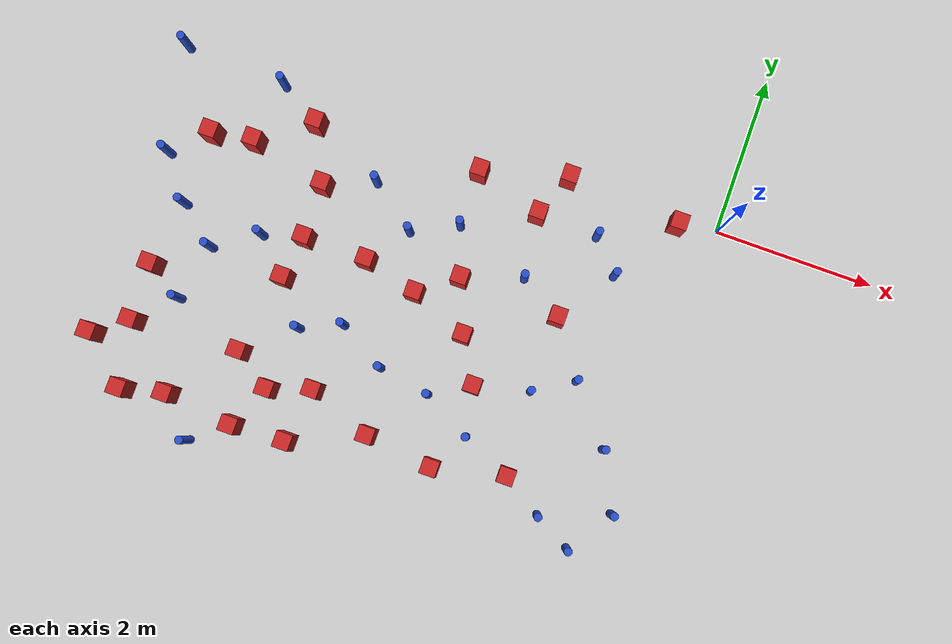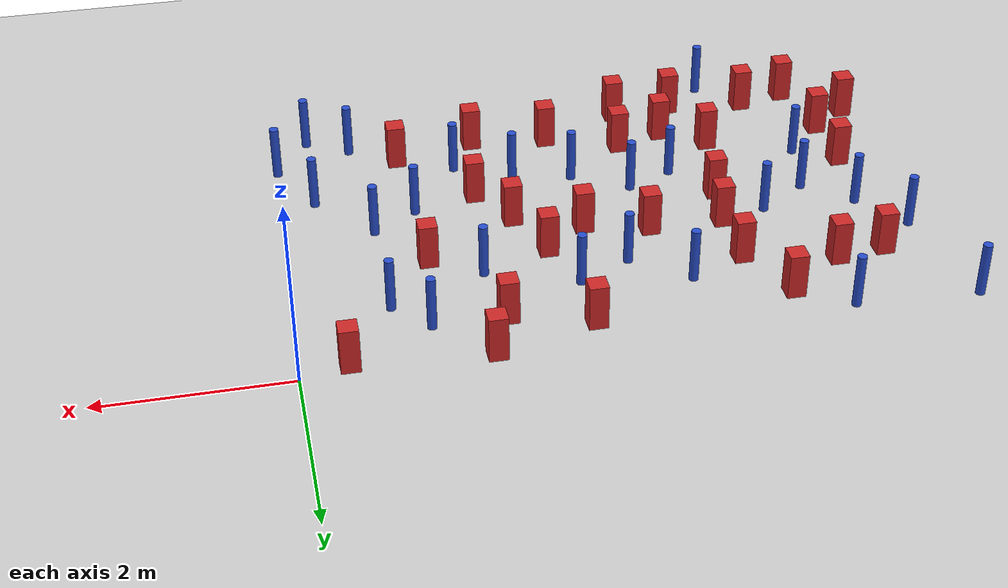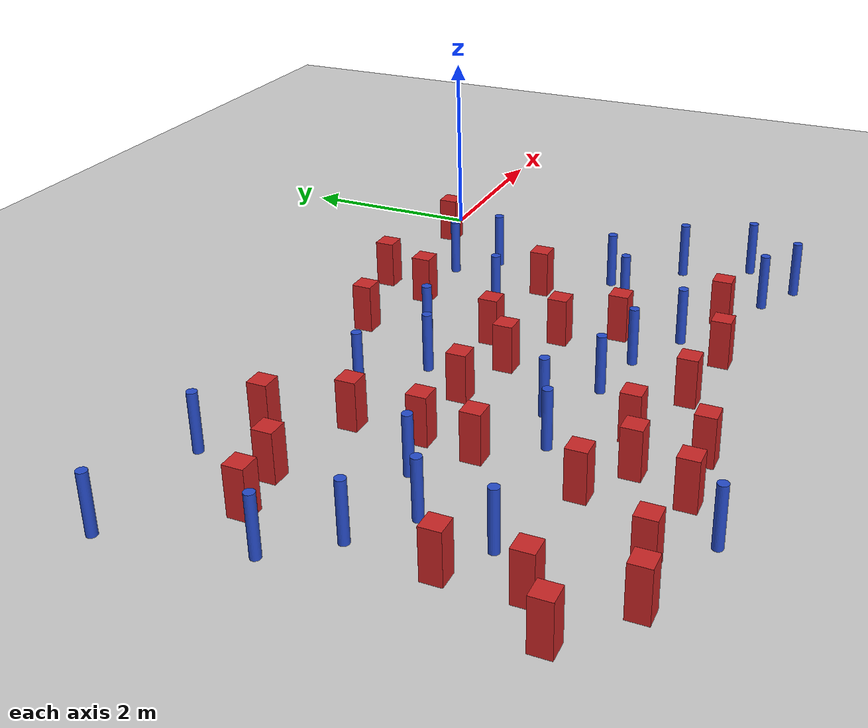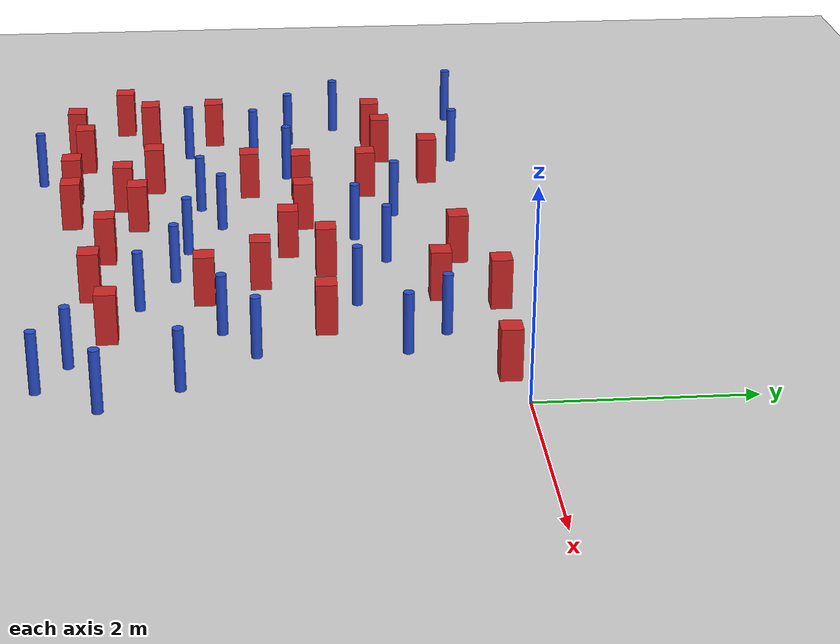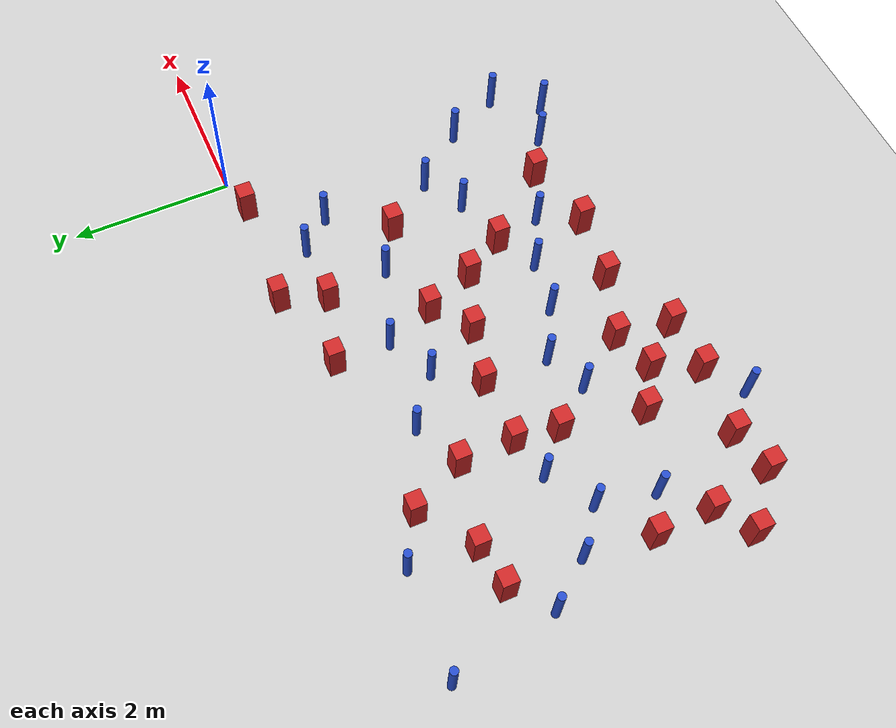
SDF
<sdf version="1.6">
 <world name="default">
  <model name="ground_plane">
   <static>1</static>
   <link name="link">
    <collision name="collision">
     <geometry><plane><normal>0 0 1</normal><size>100 100</size></plane></geometry>
     <surface><friction><ode><mu>100</mu><mu2>50</mu2></ode></friction></surface>
    </collision>
    <visual name="visual">
     <cast_shadows>0</cast_shadows>
     <geometry><plane><normal>0 0 1</normal><size>100 100</size></plane></geometry>
     <material>
      <ambient>1.0 1.0 1.0 1.0</ambient>
      <diffuse>0.8 0.8 0.8 1.0</diffuse>
      <specular>0.01 0.01 0.01 1.000000</specular>
     </material>
    </visual>
   </link>
  </model>
  <model name="NamedLocations">
   <static>true</static>
   <link name="DefaultStart"><pose>8.5 0 0 0 0 3.14</pose></link>
  </model>
  <model name="pole_obstacle5">
   <static>true</static>
   <pose>-5.92422427441 -2.99336722222 7.38925637345e-09 -8.47170692798e-08 1.24976764937e-08 -1.74513093023e-07</pose>
   <link name="link">
    <pose>0 0 0.3 0 -0 0</pose>
    <inertial>
     <mass>1</mass>
     <inertia><ixx>0.145833</ixx><ixy>0</ixy><ixz>0</ixz><iyy>0.145833</iyy><iyz>0</iyz><izz>0.125</izz></inertia>
    </inertial>
    <collision name="collision">
     <geometry><cylinder><radius>0.05</radius><length>.6</length></cylinder></geometry>
    </collision>
    <visual name="visual">
     <geometry><cylinder><radius>0.05</radius><length>.6</length></cylinder></geometry>
     <material>
      <script><name>Gazebo/Blue</name><uri>file://media/materials/scripts/gazebo.material</uri></script>
     </material>
    </visual>
   </link>
  </model>
  <model name="pole_obstacle14">
   <static>true</static>
   <pose>-1.03202337252 -2.32573109386 7.38925637345e-09 -8.47170692799e-08 1.24976765076e-08 -1.74513093016e-07</pose>
   <link name="link">
    <pose>0 0 0.3 0 -0 0</pose>
    <inertial>
     <mass>1</mass>
     <inertia><ixx>0.145833</ixx><ixy>0</ixy><ixz>0</ixz><iyy>0.145833</iyy><iyz>0</iyz><izz>0.125</izz></inertia>
    </inertial>
    <collision name="collision">
     <geometry><cylinder><radius>0.05</radius><length>.6</length></cylinder></geometry>
    </collision>
    <visual name="visual">
     <geometry><cylinder><radius>0.05</radius><length>.6</length></cylinder></geometry>
     <material>
      <script><name>Gazebo/Blue</name><uri>file://media/materials/scripts/gazebo.material</uri></script>
     </material>
    </visual>
   </link>
  </model>
  <model name="square_post_obstacle16">
   <static>true</static>
   <pose>-6.75771435495 -3.72910551877 1.91545236811e-07 -7.35059704564e-06 1.12565212e-07 2.39332434364e-05</pose>
   <link name="link">
    <pose>0 0 0.25 0 -0 0</pose>
    <inertial>
     <mass>100</mass>
     <inertia>
      <ixx>0.166667</ixx>
      <ixy>0</ixy>
      <ixz>0</ixz>
      <iyy>0.166667</iyy>
      <iyz>0</iyz>
      <izz>0.166667</izz>
     </inertia>
    </inertial>
    <collision name="collision"><geometry><box><size>.2 .2 .5</size></box></geometry></collision>
    <visual name="visual">
     <geometry><box><size>.2 .2 .5</size></box></geometry>
     <material>
      <script><name>Gazebo/Red</name><uri>file://media/materials/scripts/gazebo.material</uri></script>
     </material>
    </visual>
   </link>
  </model>
  <model name="pole_obstacle21">
   <static>true</static>
   <pose>-2.67683646743 -3.08276021898 7.38925637345e-09 -8.47170692798e-08 1.24976764939e-08 -1.74513093025e-07</pose>
   <link name="link">
    <pose>0 0 0.3 0 -0 0</pose>
    <inertial>
     <mass>1</mass>
     <inertia><ixx>0.145833</ixx><ixy>0</ixy><ixz>0</ixz><iyy>0.145833</iyy><iyz>0</iyz><izz>0.125</izz></inertia>
    </inertial>
    <collision name="collision">
     <geometry><cylinder><radius>0.05</radius><length>.6</length></cylinder></geometry>
    </collision>
    <visual name="visual">
     <geometry><cylinder><radius>0.05</radius><length>.6</length></cylinder></geometry>
     <material>
      <script><name>Gazebo/Blue</name><uri>file://media/materials/scripts/gazebo.material</uri></script>
     </material>
    </visual>
   </link>
  </model>
  <model name="square_post_obstacle19">
   <static>true</static>
   <pose>-2.14690957063 -0.559340473008 1.91545236811e-07 -7.35059704564e-06 1.12565212e-07 2.39332434364e-05</pose>
   <link name="link">
    <pose>0 0 0.25 0 -0 0</pose>
    <inertial>
     <mass>100</mass>
     <inertia>
      <ixx>0.166667</ixx>
      <ixy>0</ixy>
      <ixz>0</ixz>
      <iyy>0.166667</iyy>
      <iyz>0</iyz>
      <izz>0.166667</izz>
     </inertia>
    </inertial>
    <collision name="collision"><geometry><box><size>.2 .2 .5</size></box></geometry></collision>
    <visual name="visual">
     <geometry><box><size>.2 .2 .5</size></box></geometry>
     <material>
      <script><name>Gazebo/Red</name><uri>file://media/materials/scripts/gazebo.material</uri></script>
     </material>
    </visual>
   </link>
  </model>
  <model name="square_post_obstacle28">
   <static>true</static>
   <pose>-1.93003767817 -0.00814988064899 1.91545236811e-07 -7.35059704564e-06 1.12565212e-07 2.39332434364e-05</pose>
   <link name="link">
    <pose>0 0 0.25 0 -0 0</pose>
    <inertial>
     <mass>100</mass>
     <inertia>
      <ixx>0.166667</ixx>
      <ixy>0</ixy>
      <ixz>0</ixz>
      <iyy>0.166667</iyy>
      <iyz>0</iyz>
      <izz>0.166667</izz>
     </inertia>
    </inertial>
    <collision name="collision"><geometry><box><size>.2 .2 .5</size></box></geometry></collision>
    <visual name="visual">
     <geometry><box><size>.2 .2 .5</size></box></geometry>
     <material>
      <script><name>Gazebo/Red</name><uri>file://media/materials/scripts/gazebo.material</uri></script>
     </material>
    </visual>
   </link>
  </model>
  <model name="pole_obstacle38">
   <static>true</static>
   <pose>-5.64297934202 -0.0756645663234 7.38925637345e-09 -8.47170692799e-08 1.24976765039e-08 -1.74513093019e-07</pose>
   <link name="link">
    <pose>0 0 0.3 0 -0 0</pose>
    <inertial>
     <mass>1</mass>
     <inertia><ixx>0.145833</ixx><ixy>0</ixy><ixz>0</ixz><iyy>0.145833</iyy><iyz>0</iyz><izz>0.125</izz></inertia>
    </inertial>
    <collision name="collision">
     <geometry><cylinder><radius>0.05</radius><length>.6</length></cylinder></geometry>
    </collision>
    <visual name="visual">
     <geometry><cylinder><radius>0.05</radius><length>.6</length></cylinder></geometry>
     <material>
      <script><name>Gazebo/Blue</name><uri>file://media/materials/scripts/gazebo.material</uri></script>
     </material>
    </visual>
   </link>
  </model>
  <model name="square_post_obstacle31">
   <static>true</static>
   <pose>-2.51497236801 -2.26017598558 1.91545236811e-07 -7.35059704564e-06 1.12565212e-07 2.39332434364e-05</pose>
   <link name="link">
    <pose>0 0 0.25 0 -0 0</pose>
    <inertial>
     <mass>100</mass>
     <inertia>
      <ixx>0.166667</ixx>
      <ixy>0</ixy>
      <ixz>0</ixz>
      <iyy>0.166667</iyy>
      <iyz>0</iyz>
      <izz>0.166667</izz>
     </inertia>
    </inertial>
    <collision name="collision"><geometry><box><size>.2 .2 .5</size></box></geometry></collision>
    <visual name="visual">
     <geometry><box><size>.2 .2 .5</size></box></geometry>
     <material>
      <script><name>Gazebo/Red</name><uri>file://media/materials/scripts/gazebo.material</uri></script>
     </material>
    </visual>
   </link>
  </model>
  <model name="pole_obstacle48">
   <static>true</static>
   <pose>-1.0188155598 -0.961352229343 7.38925637345e-09 -8.471706928e-08 1.24976765099e-08 -1.74513093016e-07</pose>
   <link name="link">
    <pose>0 0 0.3 0 -0 0</pose>
    <inertial>
     <mass>1</mass>
     <inertia><ixx>0.145833</ixx><ixy>0</ixy><ixz>0</ixz><iyy>0.145833</iyy><iyz>0</iyz><izz>0.125</izz></inertia>
    </inertial>
    <collision name="collision">
     <geometry><cylinder><radius>0.05</radius><length>.6</length></cylinder></geometry>
    </collision>
    <visual name="visual">
     <geometry><cylinder><radius>0.05</radius><length>.6</length></cylinder></geometry>
     <material>
      <script><name>Gazebo/Blue</name><uri>file://media/materials/scripts/gazebo.material</uri></script>
     </material>
    </visual>
   </link>
  </model>
  <model name="pole_obstacle55">
   <static>true</static>
   <pose>-0.460701783889 -2.99627927897 7.38925637345e-09 -8.471706928e-08 1.24976765163e-08 -1.74513093012e-07</pose>
   <link name="link">
    <pose>0 0 0.3 0 -0 0</pose>
    <inertial>
     <mass>1</mass>
     <inertia><ixx>0.145833</ixx><ixy>0</ixy><ixz>0</ixz><iyy>0.145833</iyy><iyz>0</iyz><izz>0.125</izz></inertia>
    </inertial>
    <collision name="collision">
     <geometry><cylinder><radius>0.05</radius><length>.6</length></cylinder></geometry>
    </collision>
    <visual name="visual">
     <geometry><cylinder><radius>0.05</radius><length>.6</length></cylinder></geometry>
     <material>
      <script><name>Gazebo/Blue</name><uri>file://media/materials/scripts/gazebo.material</uri></script>
     </material>
    </visual>
   </link>
  </model>
  <model name="square_post_obstacle43">
   <static>true</static>
   <pose>-4.08844480099 -4.17398245557 1.91545236811e-07 -7.35059704564e-06 1.12565212e-07 2.39332434364e-05</pose>
   <link name="link">
    <pose>0 0 0.25 0 -0 0</pose>
    <inertial>
     <mass>100</mass>
     <inertia>
      <ixx>0.166667</ixx>
      <ixy>0</ixy>
      <ixz>0</ixz>
      <iyy>0.166667</iyy>
      <iyz>0</iyz>
      <izz>0.166667</izz>
     </inertia>
    </inertial>
    <collision name="collision"><geometry><box><size>.2 .2 .5</size></box></geometry></collision>
    <visual name="visual">
     <geometry><box><size>.2 .2 .5</size></box></geometry>
     <material>
      <script><name>Gazebo/Red</name><uri>file://media/materials/scripts/gazebo.material</uri></script>
     </material>
    </visual>
   </link>
  </model>
  <model name="pole_obstacle57">
   <static>true</static>
   <pose>-0.117461092135 -3.69147865724 7.38925637345e-09 -8.47170692799e-08 1.24976765077e-08 -1.74513093017e-07</pose>
   <link name="link">
    <pose>0 0 0.3 0 -0 0</pose>
    <inertial>
     <mass>1</mass>
     <inertia><ixx>0.145833</ixx><ixy>0</ixy><ixz>0</ixz><iyy>0.145833</iyy><iyz>0</iyz><izz>0.125</izz></inertia>
    </inertial>
    <collision name="collision">
     <geometry><cylinder><radius>0.05</radius><length>.6</length></cylinder></geometry>
    </collision>
    <visual name="visual">
     <geometry><cylinder><radius>0.05</radius><length>.6</length></cylinder></geometry>
     <material>
      <script><name>Gazebo/Blue</name><uri>file://media/materials/scripts/gazebo.material</uri></script>
     </material>
    </visual>
   </link>
  </model>
  <model name="square_post_obstacle48">
   <static>true</static>
   <pose>-1.50870329451 -1.67532720508 1.91545236811e-07 -7.35059704564e-06 1.12565212e-07 2.39332434364e-05</pose>
   <link name="link">
    <pose>0 0 0.25 0 -0 0</pose>
    <inertial>
     <mass>100</mass>
     <inertia>
      <ixx>0.166667</ixx>
      <ixy>0</ixy>
      <ixz>0</ixz>
      <iyy>0.166667</iyy>
      <iyz>0</iyz>
      <izz>0.166667</izz>
     </inertia>
    </inertial>
    <collision name="collision"><geometry><box><size>.2 .2 .5</size></box></geometry></collision>
    <visual name="visual">
     <geometry><box><size>.2 .2 .5</size></box></geometry>
     <material>
      <script><name>Gazebo/Red</name><uri>file://media/materials/scripts/gazebo.material</uri></script>
     </material>
    </visual>
   </link>
  </model>
  <model name="square_post_obstacle49">
   <static>true</static>
   <pose>-6.3395629756 -3.42934586644 1.91545236811e-07 -7.35059704564e-06 1.12565212e-07 2.39332434364e-05</pose>
   <link name="link">
    <pose>0 0 0.25 0 -0 0</pose>
    <inertial>
     <mass>100</mass>
     <inertia>
      <ixx>0.166667</ixx>
      <ixy>0</ixy>
      <ixz>0</ixz>
      <iyy>0.166667</iyy>
      <iyz>0</iyz>
      <izz>0.166667</izz>
     </inertia>
    </inertial>
    <collision name="collision"><geometry><box><size>.2 .2 .5</size></box></geometry></collision>
    <visual name="visual">
     <geometry><box><size>.2 .2 .5</size></box></geometry>
     <material>
      <script><name>Gazebo/Red</name><uri>file://media/materials/scripts/gazebo.material</uri></script>
     </material>
    </visual>
   </link>
  </model>
  <model name="square_post_obstacle56">
   <static>true</static>
   <pose>-3.92526877685 -1.79413150482 1.91545236811e-07 -7.35059704564e-06 1.12565212e-07 2.39332434364e-05</pose>
   <link name="link">
    <pose>0 0 0.25 0 -0 0</pose>
    <inertial>
     <mass>100</mass>
     <inertia>
      <ixx>0.166667</ixx>
      <ixy>0</ixy>
      <ixz>0</ixz>
      <iyy>0.166667</iyy>
      <iyz>0</iyz>
      <izz>0.166667</izz>
     </inertia>
    </inertial>
    <collision name="collision"><geometry><box><size>.2 .2 .5</size></box></geometry></collision>
    <visual name="visual">
     <geometry><box><size>.2 .2 .5</size></box></geometry>
     <material>
      <script><name>Gazebo/Red</name><uri>file://media/materials/scripts/gazebo.material</uri></script>
     </material>
    </visual>
   </link>
  </model>
  <model name="pole_obstacle69">
   <static>true</static>
   <pose>-3.56157853893 -1.28393471267 7.38925637345e-09 -8.47170692796e-08 1.24976764713e-08 -1.74513093037e-07</pose>
   <link name="link">
    <pose>0 0 0.3 0 -0 0</pose>
    <inertial>
     <mass>1</mass>
     <inertia><ixx>0.145833</ixx><ixy>0</ixy><ixz>0</ixz><iyy>0.145833</iyy><iyz>0</iyz><izz>0.125</izz></inertia>
    </inertial>
    <collision name="collision">
     <geometry><cylinder><radius>0.05</radius><length>.6</length></cylinder></geometry>
    </collision>
    <visual name="visual">
     <geometry><cylinder><radius>0.05</radius><length>.6</length></cylinder></geometry>
     <material>
      <script><name>Gazebo/Blue</name><uri>file://media/materials/scripts/gazebo.material</uri></script>
     </material>
    </visual>
   </link>
  </model>
  <model name="pole_obstacle70">
   <static>true</static>
   <pose>-6.2724538745 -1.87805003263 7.38925637345e-09 -8.471706928e-08 1.24976765134e-08 -1.74513093015e-07</pose>
   <link name="link">
    <pose>0 0 0.3 0 -0 0</pose>
    <inertial>
     <mass>1</mass>
     <inertia><ixx>0.145833</ixx><ixy>0</ixy><ixz>0</ixz><iyy>0.145833</iyy><iyz>0</iyz><izz>0.125</izz></inertia>
    </inertial>
    <collision name="collision">
     <geometry><cylinder><radius>0.05</radius><length>.6</length></cylinder></geometry>
    </collision>
    <visual name="visual">
     <geometry><cylinder><radius>0.05</radius><length>.6</length></cylinder></geometry>
     <material>
      <script><name>Gazebo/Blue</name><uri>file://media/materials/scripts/gazebo.material</uri></script>
     </material>
    </visual>
   </link>
  </model>
  <model name="pole_obstacle71">
   <static>true</static>
   <pose>-5.24745633931 -1.9248122775 7.38925637345e-09 -8.471706928e-08 1.24976765134e-08 -1.74513093015e-07</pose>
   <link name="link">
    <pose>0 0 0.3 0 -0 0</pose>
    <inertial>
     <mass>1</mass>
     <inertia><ixx>0.145833</ixx><ixy>0</ixy><ixz>0</ixz><iyy>0.145833</iyy><iyz>0</iyz><izz>0.125</izz></inertia>
    </inertial>
    <collision name="collision">
     <geometry><cylinder><radius>0.05</radius><length>.6</length></cylinder></geometry>
    </collision>
    <visual name="visual">
     <geometry><cylinder><radius>0.05</radius><length>.6</length></cylinder></geometry>
     <material>
      <script><name>Gazebo/Blue</name><uri>file://media/materials/scripts/gazebo.material</uri></script>
     </material>
    </visual>
   </link>
  </model>
  <model name="pole_obstacle76">
   <static>true</static>
   <pose>-2.99793038643 -1.00536920818 7.38925637345e-09 -8.471706928e-08 1.2497676513e-08 -1.74513093016e-07</pose>
   <link name="link">
    <pose>0 0 0.3 0 -0 0</pose>
    <inertial>
     <mass>1</mass>
     <inertia><ixx>0.145833</ixx><ixy>0</ixy><ixz>0</ixz><iyy>0.145833</iyy><iyz>0</iyz><izz>0.125</izz></inertia>
    </inertial>
    <collision name="collision">
     <geometry><cylinder><radius>0.05</radius><length>.6</length></cylinder></geometry>
    </collision>
    <visual name="visual">
     <geometry><cylinder><radius>0.05</radius><length>.6</length></cylinder></geometry>
     <material>
      <script><name>Gazebo/Blue</name><uri>file://media/materials/scripts/gazebo.material</uri></script>
     </material>
    </visual>
   </link>
  </model>
  <model name="pole_obstacle79">
   <static>true</static>
   <pose>-0.952707416743 -3.99734575518 7.38925637345e-09 -8.471706928e-08 1.24976765256e-08 -1.74513093008e-07</pose>
   <link name="link">
    <pose>0 0 0.3 0 -0 0</pose>
    <inertial>
     <mass>1</mass>
     <inertia><ixx>0.145833</ixx><ixy>0</ixy><ixz>0</ixz><iyy>0.145833</iyy><iyz>0</iyz><izz>0.125</izz></inertia>
    </inertial>
    <collision name="collision">
     <geometry><cylinder><radius>0.05</radius><length>.6</length></cylinder></geometry>
    </collision>
    <visual name="visual">
     <geometry><cylinder><radius>0.05</radius><length>.6</length></cylinder></geometry>
     <material>
      <script><name>Gazebo/Blue</name><uri>file://media/materials/scripts/gazebo.material</uri></script>
     </material>
    </visual>
   </link>
  </model>
  <model name="pole_obstacle89">
   <static>true</static>
   <pose>-5.78349291071 -2.27598309857 7.38925637345e-09 -8.47170692798e-08 1.24976764937e-08 -1.74513093023e-07</pose>
   <link name="link">
    <pose>0 0 0.3 0 -0 0</pose>
    <inertial>
     <mass>1</mass>
     <inertia><ixx>0.145833</ixx><ixy>0</ixy><ixz>0</ixz><iyy>0.145833</iyy><iyz>0</iyz><izz>0.125</izz></inertia>
    </inertial>
    <collision name="collision">
     <geometry><cylinder><radius>0.05</radius><length>.6</length></cylinder></geometry>
    </collision>
    <visual name="visual">
     <geometry><cylinder><radius>0.05</radius><length>.6</length></cylinder></geometry>
     <material>
      <script><name>Gazebo/Blue</name><uri>file://media/materials/scripts/gazebo.material</uri></script>
     </material>
    </visual>
   </link>
  </model>
  <model name="square_post_obstacle82">
   <static>true</static>
   <pose>-6.36509576138 -2.71594949422 1.91545236811e-07 -7.35059704564e-06 1.12565212e-07 2.39332434364e-05</pose>
   <link name="link">
    <pose>0 0 0.25 0 -0 0</pose>
    <inertial>
     <mass>100</mass>
     <inertia>
      <ixx>0.166667</ixx>
      <ixy>0</ixy>
      <ixz>0</ixz>
      <iyy>0.166667</iyy>
      <iyz>0</iyz>
      <izz>0.166667</izz>
     </inertia>
    </inertial>
    <collision name="collision"><geometry><box><size>.2 .2 .5</size></box></geometry></collision>
    <visual name="visual">
     <geometry><box><size>.2 .2 .5</size></box></geometry>
     <material>
      <script><name>Gazebo/Red</name><uri>file://media/materials/scripts/gazebo.material</uri></script>
     </material>
    </visual>
   </link>
  </model>
  <model name="pole_obstacle94">
   <static>true</static>
   <pose>-2.06767888211 -3.40604090848 7.38925637345e-09 -8.47170692798e-08 1.24976764939e-08 -1.74513093025e-07</pose>
   <link name="link">
    <pose>0 0 0.3 0 -0 0</pose>
    <inertial>
     <mass>1</mass>
     <inertia><ixx>0.145833</ixx><ixy>0</ixy><ixz>0</ixz><iyy>0.145833</iyy><iyz>0</iyz><izz>0.125</izz></inertia>
    </inertial>
    <collision name="collision">
     <geometry><cylinder><radius>0.05</radius><length>.6</length></cylinder></geometry>
    </collision>
    <visual name="visual">
     <geometry><cylinder><radius>0.05</radius><length>.6</length></cylinder></geometry>
     <material>
      <script><name>Gazebo/Blue</name><uri>file://media/materials/scripts/gazebo.material</uri></script>
     </material>
    </visual>
   </link>
  </model>
  <model name="square_post_obstacle90">
   <static>true</static>
   <pose>-4.74789491148 -1.10227227521 1.91545236811e-07 -7.35059704564e-06 1.12565212e-07 2.39332434364e-05</pose>
   <link name="link">
    <pose>0 0 0.25 0 -0 0</pose>
    <inertial>
     <mass>100</mass>
     <inertia>
      <ixx>0.166667</ixx>
      <ixy>0</ixy>
      <ixz>0</ixz>
      <iyy>0.166667</iyy>
      <iyz>0</iyz>
      <izz>0.166667</izz>
     </inertia>
    </inertial>
    <collision name="collision"><geometry><box><size>.2 .2 .5</size></box></geometry></collision>
    <visual name="visual">
     <geometry><box><size>.2 .2 .5</size></box></geometry>
     <material>
      <script><name>Gazebo/Red</name><uri>file://media/materials/scripts/gazebo.material</uri></script>
     </material>
    </visual>
   </link>
  </model>
  <model name="square_post_obstacle96">
   <static>true</static>
   <pose>-4.80482659674 -2.3335534852 1.91545236811e-07 -7.35059704564e-06 1.12565212e-07 2.39332434364e-05</pose>
   <link name="link">
    <pose>0 0 0.25 0 -0 0</pose>
    <inertial>
     <mass>100</mass>
     <inertia>
      <ixx>0.166667</ixx>
      <ixy>0</ixy>
      <ixz>0</ixz>
      <iyy>0.166667</iyy>
      <iyz>0</iyz>
      <izz>0.166667</izz>
     </inertia>
    </inertial>
    <collision name="collision"><geometry><box><size>.2 .2 .5</size></box></geometry></collision>
    <visual name="visual">
     <geometry><box><size>.2 .2 .5</size></box></geometry>
     <material>
      <script><name>Gazebo/Red</name><uri>file://media/materials/scripts/gazebo.material</uri></script>
     </material>
    </visual>
   </link>
  </model>
  <model name="square_post_obstacle97">
   <static>true</static>
   <pose>-6.25207061977 -0.951577814349 1.91545236811e-07 -7.35059704564e-06 1.12565212e-07 2.39332434364e-05</pose>
   <link name="link">
    <pose>0 0 0.25 0 -0 0</pose>
    <inertial>
     <mass>100</mass>
     <inertia>
      <ixx>0.166667</ixx>
      <ixy>0</ixy>
      <ixz>0</ixz>
      <iyy>0.166667</iyy>
      <iyz>0</iyz>
      <izz>0.166667</izz>
     </inertia>
    </inertial>
    <collision name="collision"><geometry><box><size>.2 .2 .5</size></box></geometry></collision>
    <visual name="visual">
     <geometry><box><size>.2 .2 .5</size></box></geometry>
     <material>
      <script><name>Gazebo/Red</name><uri>file://media/materials/scripts/gazebo.material</uri></script>
     </material>
    </visual>
   </link>
  </model>
  <model name="square_post_obstacle100">
   <static>true</static>
   <pose>-3.98646588152 -3.48772343266 1.91545236811e-07 -7.35059704564e-06 1.12565212e-07 2.39332434364e-05</pose>
   <link name="link">
    <pose>0 0 0.25 0 -0 0</pose>
    <inertial>
     <mass>100</mass>
     <inertia>
      <ixx>0.166667</ixx>
      <ixy>0</ixy>
      <ixz>0</ixz>
      <iyy>0.166667</iyy>
      <iyz>0</iyz>
      <izz>0.166667</izz>
     </inertia>
    </inertial>
    <collision name="collision"><geometry><box><size>.2 .2 .5</size></box></geometry></collision>
    <visual name="visual">
     <geometry><box><size>.2 .2 .5</size></box></geometry>
     <material>
      <script><name>Gazebo/Red</name><uri>file://media/materials/scripts/gazebo.material</uri></script>
     </material>
    </visual>
   </link>
  </model>
  <model name="pole_obstacle106">
   <static>true</static>
   <pose>-3.32599807744 -2.96946208656 7.38925637345e-09 -8.47170692798e-08 1.24976764939e-08 -1.74513093025e-07</pose>
   <link name="link">
    <pose>0 0 0.3 0 -0 0</pose>
    <inertial>
     <mass>1</mass>
     <inertia><ixx>0.145833</ixx><ixy>0</ixy><ixz>0</ixz><iyy>0.145833</iyy><iyz>0</iyz><izz>0.125</izz></inertia>
    </inertial>
    <collision name="collision">
     <geometry><cylinder><radius>0.05</radius><length>.6</length></cylinder></geometry>
    </collision>
    <visual name="visual">
     <geometry><cylinder><radius>0.05</radius><length>.6</length></cylinder></geometry>
     <material>
      <script><name>Gazebo/Blue</name><uri>file://media/materials/scripts/gazebo.material</uri></script>
     </material>
    </visual>
   </link>
  </model>
  <model name="square_post_obstacle103">
   <static>true</static>
   <pose>-4.7664182334 -4.20837568746 1.91545236811e-07 -7.35059704564e-06 1.12565212e-07 2.39332434364e-05</pose>
   <link name="link">
    <pose>0 0 0.25 0 -0 0</pose>
    <inertial>
     <mass>100</mass>
     <inertia>
      <ixx>0.166667</ixx>
      <ixy>0</ixy>
      <ixz>0</ixz>
      <iyy>0.166667</iyy>
      <iyz>0</iyz>
      <izz>0.166667</izz>
     </inertia>
    </inertial>
    <collision name="collision"><geometry><box><size>.2 .2 .5</size></box></geometry></collision>
    <visual name="visual">
     <geometry><box><size>.2 .2 .5</size></box></geometry>
     <material>
      <script><name>Gazebo/Red</name><uri>file://media/materials/scripts/gazebo.material</uri></script>
     </material>
    </visual>
   </link>
  </model>
  <model name="square_post_obstacle104">
   <static>true</static>
   <pose>-5.72396557371 -0.874381501303 1.91545236811e-07 -7.35059704564e-06 1.12565212e-07 2.39332434364e-05</pose>
   <link name="link">
    <pose>0 0 0.25 0 -0 0</pose>
    <inertial>
     <mass>100</mass>
     <inertia>
      <ixx>0.166667</ixx>
      <ixy>0</ixy>
      <ixz>0</ixz>
      <iyy>0.166667</iyy>
      <iyz>0</iyz>
      <izz>0.166667</izz>
     </inertia>
    </inertial>
    <collision name="collision"><geometry><box><size>.2 .2 .5</size></box></geometry></collision>
    <visual name="visual">
     <geometry><box><size>.2 .2 .5</size></box></geometry>
     <material>
      <script><name>Gazebo/Red</name><uri>file://media/materials/scripts/gazebo.material</uri></script>
     </material>
    </visual>
   </link>
  </model>
  <model name="pole_obstacle111">
   <static>true</static>
   <pose>-2.04256686993 -1.35504565745 7.38925637345e-09 -8.47170692799e-08 1.24976764992e-08 -1.74513093021e-07</pose>
   <link name="link">
    <pose>0 0 0.3 0 -0 0</pose>
    <inertial>
     <mass>1</mass>
     <inertia><ixx>0.145833</ixx><ixy>0</ixy><ixz>0</ixz><iyy>0.145833</iyy><iyz>0</iyz><izz>0.125</izz></inertia>
    </inertial>
    <collision name="collision">
     <geometry><cylinder><radius>0.05</radius><length>.6</length></cylinder></geometry>
    </collision>
    <visual name="visual">
     <geometry><cylinder><radius>0.05</radius><length>.6</length></cylinder></geometry>
     <material>
      <script><name>Gazebo/Blue</name><uri>file://media/materials/scripts/gazebo.material</uri></script>
     </material>
    </visual>
   </link>
  </model>
  <model name="square_post_obstacle108">
   <static>true</static>
   <pose>-2.34686693396 -3.88388409919 1.91545236811e-07 -7.35059704564e-06 1.12565212e-07 2.39332434364e-05</pose>
   <link name="link">
    <pose>0 0 0.25 0 -0 0</pose>
    <inertial>
     <mass>100</mass>
     <inertia>
      <ixx>0.166667</ixx>
      <ixy>0</ixy>
      <ixz>0</ixz>
      <iyy>0.166667</iyy>
      <iyz>0</iyz>
      <izz>0.166667</izz>
     </inertia>
    </inertial>
    <collision name="collision"><geometry><box><size>.2 .2 .5</size></box></geometry></collision>
    <visual name="visual">
     <geometry><box><size>.2 .2 .5</size></box></geometry>
     <material>
      <script><name>Gazebo/Red</name><uri>file://media/materials/scripts/gazebo.material</uri></script>
     </material>
    </visual>
   </link>
  </model>
  <model name="square_post_obstacle112">
   <static>true</static>
   <pose>-2.19608919581 -2.79679325596 1.91545236811e-07 -7.35059704564e-06 1.12565212e-07 2.39332434364e-05</pose>
   <link name="link">
    <pose>0 0 0.25 0 -0 0</pose>
    <inertial>
     <mass>100</mass>
     <inertia>
      <ixx>0.166667</ixx>
      <ixy>0</ixy>
      <ixz>0</ixz>
      <iyy>0.166667</iyy>
      <iyz>0</iyz>
      <izz>0.166667</izz>
     </inertia>
    </inertial>
    <collision name="collision"><geometry><box><size>.2 .2 .5</size></box></geometry></collision>
    <visual name="visual">
     <geometry><box><size>.2 .2 .5</size></box></geometry>
     <material>
      <script><name>Gazebo/Red</name><uri>file://media/materials/scripts/gazebo.material</uri></script>
     </material>
    </visual>
   </link>
  </model>
  <model name="square_post_obstacle118">
   <static>true</static>
   <pose>-6.1725470108 -4.23973020805 1.91545236811e-07 -7.35059704564e-06 1.12565212e-07 2.39332434364e-05</pose>
   <link name="link">
    <pose>0 0 0.25 0 -0 0</pose>
    <inertial>
     <mass>100</mass>
     <inertia>
      <ixx>0.166667</ixx>
      <ixy>0</ixy>
      <ixz>0</ixz>
      <iyy>0.166667</iyy>
      <iyz>0</iyz>
      <izz>0.166667</izz>
     </inertia>
    </inertial>
    <collision name="collision"><geometry><box><size>.2 .2 .5</size></box></geometry></collision>
    <visual name="visual">
     <geometry><box><size>.2 .2 .5</size></box></geometry>
     <material>
      <script><name>Gazebo/Red</name><uri>file://media/materials/scripts/gazebo.material</uri></script>
     </material>
    </visual>
   </link>
  </model>
  <model name="pole_obstacle122">
   <static>true</static>
   <pose>-6.6910655771 -1.34567387144 7.38925637345e-09 -8.471706928e-08 1.24976765134e-08 -1.74513093015e-07</pose>
   <link name="link">
    <pose>0 0 0.3 0 -0 0</pose>
    <inertial>
     <mass>1</mass>
     <inertia><ixx>0.145833</ixx><ixy>0</ixy><ixz>0</ixz><iyy>0.145833</iyy><iyz>0</iyz><izz>0.125</izz></inertia>
    </inertial>
    <collision name="collision">
     <geometry><cylinder><radius>0.05</radius><length>.6</length></cylinder></geometry>
    </collision>
    <visual name="visual">
     <geometry><cylinder><radius>0.05</radius><length>.6</length></cylinder></geometry>
     <material>
      <script><name>Gazebo/Blue</name><uri>file://media/materials/scripts/gazebo.material</uri></script>
     </material>
    </visual>
   </link>
  </model>
  <model name="pole_obstacle125">
   <static>true</static>
   <pose>-4.4227318911 -2.84979020173 7.38925637345e-09 -8.47170692798e-08 1.24976764937e-08 -1.74513093023e-07</pose>
   <link name="link">
    <pose>0 0 0.3 0 -0 0</pose>
    <inertial>
     <mass>1</mass>
     <inertia><ixx>0.145833</ixx><ixy>0</ixy><ixz>0</ixz><iyy>0.145833</iyy><iyz>0</iyz><izz>0.125</izz></inertia>
    </inertial>
    <collision name="collision">
     <geometry><cylinder><radius>0.05</radius><length>.6</length></cylinder></geometry>
    </collision>
    <visual name="visual">
     <geometry><cylinder><radius>0.05</radius><length>.6</length></cylinder></geometry>
     <material>
      <script><name>Gazebo/Blue</name><uri>file://media/materials/scripts/gazebo.material</uri></script>
     </material>
    </visual>
   </link>
  </model>
  <model name="square_post_obstacle123">
   <static>true</static>
   <pose>-3.19339618363 -3.77926375443 1.91545236811e-07 -7.35059704564e-06 1.12565212e-07 2.39332434364e-05</pose>
   <link name="link">
    <pose>0 0 0.25 0 -0 0</pose>
    <inertial>
     <mass>100</mass>
     <inertia>
      <ixx>0.166667</ixx>
      <ixy>0</ixy>
      <ixz>0</ixz>
      <iyy>0.166667</iyy>
      <iyz>0</iyz>
      <izz>0.166667</izz>
     </inertia>
    </inertial>
    <collision name="collision"><geometry><box><size>.2 .2 .5</size></box></geometry></collision>
    <visual name="visual">
     <geometry><box><size>.2 .2 .5</size></box></geometry>
     <material>
      <script><name>Gazebo/Red</name><uri>file://media/materials/scripts/gazebo.material</uri></script>
     </material>
    </visual>
   </link>
  </model>
  <model name="square_post_obstacle125">
   <static>true</static>
   <pose>-4.51319831379 -3.66006336567 1.91545236811e-07 -7.35059704564e-06 1.12565212e-07 2.39332434364e-05</pose>
   <link name="link">
    <pose>0 0 0.25 0 -0 0</pose>
    <inertial>
     <mass>100</mass>
     <inertia>
      <ixx>0.166667</ixx>
      <ixy>0</ixy>
      <ixz>0</ixz>
      <iyy>0.166667</iyy>
      <iyz>0</iyz>
      <izz>0.166667</izz>
     </inertia>
    </inertial>
    <collision name="collision"><geometry><box><size>.2 .2 .5</size></box></geometry></collision>
    <visual name="visual">
     <geometry><box><size>.2 .2 .5</size></box></geometry>
     <material>
      <script><name>Gazebo/Red</name><uri>file://media/materials/scripts/gazebo.material</uri></script>
     </material>
    </visual>
   </link>
  </model>
  <model name="square_post_obstacle157">
   <static>true</static>
   <pose>-2.99402189617 -0.303254370995 1.91545236811e-07 -7.35059704564e-06 1.12565212e-07 2.39332434364e-05</pose>
   <link name="link">
    <pose>0 0 0.25 0 -0 0</pose>
    <inertial>
     <mass>100</mass>
     <inertia>
      <ixx>0.166667</ixx>
      <ixy>0</ixy>
      <ixz>0</ixz>
      <iyy>0.166667</iyy>
      <iyz>0</iyz>
      <izz>0.166667</izz>
     </inertia>
    </inertial>
    <collision name="collision"><geometry><box><size>.2 .2 .5</size></box></geometry></collision>
    <visual name="visual">
     <geometry><box><size>.2 .2 .5</size></box></geometry>
     <material>
      <script><name>Gazebo/Red</name><uri>file://media/materials/scripts/gazebo.material</uri></script>
     </material>
    </visual>
   </link>
  </model>
  <model name="pole_obstacle170">
   <static>true</static>
   <pose>-5.21574487305 -4.56223541709 7.38925637345e-09 -8.47170692796e-08 1.24976764786e-08 -1.74513093032e-07</pose>
   <link name="link">
    <pose>0 0 0.3 0 -0 0</pose>
    <inertial>
     <mass>1</mass>
     <inertia><ixx>0.145833</ixx><ixy>0</ixy><ixz>0</ixz><iyy>0.145833</iyy><iyz>0</iyz><izz>0.125</izz></inertia>
    </inertial>
    <collision name="collision">
     <geometry><cylinder><radius>0.05</radius><length>.6</length></cylinder></geometry>
    </collision>
    <visual name="visual">
     <geometry><cylinder><radius>0.05</radius><length>.6</length></cylinder></geometry>
     <material>
      <script><name>Gazebo/Blue</name><uri>file://media/materials/scripts/gazebo.material</uri></script>
     </material>
    </visual>
   </link>
  </model>
  <model name="pole_obstacle172">
   <static>true</static>
   <pose>-3.92280570181 -2.63004831884 7.38925637345e-09 -8.471706928e-08 1.24976765098e-08 -1.74513093016e-07</pose>
   <link name="link">
    <pose>0 0 0.3 0 -0 0</pose>
    <inertial>
     <mass>1</mass>
     <inertia><ixx>0.145833</ixx><ixy>0</ixy><ixz>0</ixz><iyy>0.145833</iyy><iyz>0</iyz><izz>0.125</izz></inertia>
    </inertial>
    <collision name="collision">
     <geometry><cylinder><radius>0.05</radius><length>.6</length></cylinder></geometry>
    </collision>
    <visual name="visual">
     <geometry><cylinder><radius>0.05</radius><length>.6</length></cylinder></geometry>
     <material>
      <script><name>Gazebo/Blue</name><uri>file://media/materials/scripts/gazebo.material</uri></script>
     </material>
    </visual>
   </link>
  </model>
  <model name="pole_obstacle176">
   <static>true</static>
   <pose>-1.51399005301 -2.62977506246 7.38925637345e-09 -8.47170692799e-08 1.24976765053e-08 -1.74513093017e-07</pose>
   <link name="link">
    <pose>0 0 0.3 0 -0 0</pose>
    <inertial>
     <mass>1</mass>
     <inertia><ixx>0.145833</ixx><ixy>0</ixy><ixz>0</ixz><iyy>0.145833</iyy><iyz>0</iyz><izz>0.125</izz></inertia>
    </inertial>
    <collision name="collision">
     <geometry><cylinder><radius>0.05</radius><length>.6</length></cylinder></geometry>
    </collision>
    <visual name="visual">
     <geometry><cylinder><radius>0.05</radius><length>.6</length></cylinder></geometry>
     <material>
      <script><name>Gazebo/Blue</name><uri>file://media/materials/scripts/gazebo.material</uri></script>
     </material>
    </visual>
   </link>
  </model>
  <model name="square_post_obstacle175">
   <static>true</static>
   <pose>-3.23784833178 -1.97150368029 1.91545236811e-07 -7.35059704564e-06 1.12565212e-07 2.39332434364e-05</pose>
   <link name="link">
    <pose>0 0 0.25 0 -0 0</pose>
    <inertial>
     <mass>100</mass>
     <inertia>
      <ixx>0.166667</ixx>
      <ixy>0</ixy>
      <ixz>0</ixz>
      <iyy>0.166667</iyy>
      <iyz>0</iyz>
      <izz>0.166667</izz>
     </inertia>
    </inertial>
    <collision name="collision"><geometry><box><size>.2 .2 .5</size></box></geometry></collision>
    <visual name="visual">
     <geometry><box><size>.2 .2 .5</size></box></geometry>
     <material>
      <script><name>Gazebo/Red</name><uri>file://media/materials/scripts/gazebo.material</uri></script>
     </material>
    </visual>
   </link>
  </model>
  <model name="square_post_obstacle189">
   <static>true</static>
   <pose>-5.63484764815 -4.1159427334 1.91545236811e-07 -7.35059704564e-06 1.12565212e-07 2.39332434364e-05</pose>
   <link name="link">
    <pose>0 0 0.25 0 -0 0</pose>
    <inertial>
     <mass>100</mass>
     <inertia>
      <ixx>0.166667</ixx>
      <ixy>0</ixy>
      <ixz>0</ixz>
      <iyy>0.166667</iyy>
      <iyz>0</iyz>
      <izz>0.166667</izz>
     </inertia>
    </inertial>
    <collision name="collision"><geometry><box><size>.2 .2 .5</size></box></geometry></collision>
    <visual name="visual">
     <geometry><box><size>.2 .2 .5</size></box></geometry>
     <material>
      <script><name>Gazebo/Red</name><uri>file://media/materials/scripts/gazebo.material</uri></script>
     </material>
    </visual>
   </link>
  </model>
  <model name="square_post_obstacle195">
   <static>true</static>
   <pose>-4.73019829549 -1.78943237512 1.91545236811e-07 -7.35059704564e-06 1.12565212e-07 2.39332434364e-05</pose>
   <link name="link">
    <pose>0 0 0.25 0 -0 0</pose>
    <inertial>
     <mass>100</mass>
     <inertia>
      <ixx>0.166667</ixx>
      <ixy>0</ixy>
      <ixz>0</ixz>
      <iyy>0.166667</iyy>
      <iyz>0</iyz>
      <izz>0.166667</izz>
     </inertia>
    </inertial>
    <collision name="collision"><geometry><box><size>.2 .2 .5</size></box></geometry></collision>
    <visual name="visual">
     <geometry><box><size>.2 .2 .5</size></box></geometry>
     <material>
      <script><name>Gazebo/Red</name><uri>file://media/materials/scripts/gazebo.material</uri></script>
     </material>
    </visual>
   </link>
  </model>
  <model name="square_post_obstacle200">
   <static>true</static>
   <pose>-5.08800373499 -0.408690058496 1.91545236811e-07 -7.35059704564e-06 1.12565212e-07 2.39332434364e-05</pose>
   <link name="link">
    <pose>0 0 0.25 0 -0 0</pose>
    <inertial>
     <mass>100</mass>
     <inertia>
      <ixx>0.166667</ixx>
      <ixy>0</ixy>
      <ixz>0</ixz>
      <iyy>0.166667</iyy>
      <iyz>0</iyz>
      <izz>0.166667</izz>
     </inertia>
    </inertial>
    <collision name="collision"><geometry><box><size>.2 .2 .5</size></box></geometry></collision>
    <visual name="visual">
     <geometry><box><size>.2 .2 .5</size></box></geometry>
     <material>
      <script><name>Gazebo/Red</name><uri>file://media/materials/scripts/gazebo.material</uri></script>
     </material>
    </visual>
   </link>
  </model>
  <model name="square_post_obstacle204">
   <static>true</static>
   <pose>-1.45634330276 -3.6772777224 1.91545236811e-07 -7.35059704564e-06 1.12565212e-07 2.39332434364e-05</pose>
   <link name="link">
    <pose>0 0 0.25 0 -0 0</pose>
    <inertial>
     <mass>100</mass>
     <inertia>
      <ixx>0.166667</ixx>
      <ixy>0</ixy>
      <ixz>0</ixz>
      <iyy>0.166667</iyy>
      <iyz>0</iyz>
      <izz>0.166667</izz>
     </inertia>
    </inertial>
    <collision name="collision"><geometry><box><size>.2 .2 .5</size></box></geometry></collision>
    <visual name="visual">
     <geometry><box><size>.2 .2 .5</size></box></geometry>
     <material>
      <script><name>Gazebo/Red</name><uri>file://media/materials/scripts/gazebo.material</uri></script>
     </material>
    </visual>
   </link>
  </model>
  <model name="pole_obstacle196">
   <static>true</static>
   <pose>-0.493156269271 -4.25222850887 7.38925637345e-09 -8.471706928e-08 1.24976765062e-08 -1.74513093016e-07</pose>
   <link name="link">
    <pose>0 0 0.3 0 -0 0</pose>
    <inertial>
     <mass>1</mass>
     <inertia><ixx>0.145833</ixx><ixy>0</ixy><ixz>0</ixz><iyy>0.145833</iyy><iyz>0</iyz><izz>0.125</izz></inertia>
    </inertial>
    <collision name="collision">
     <geometry><cylinder><radius>0.05</radius><length>.6</length></cylinder></geometry>
    </collision>
    <visual name="visual">
     <geometry><cylinder><radius>0.05</radius><length>.6</length></cylinder></geometry>
     <material>
      <script><name>Gazebo/Blue</name><uri>file://media/materials/scripts/gazebo.material</uri></script>
     </material>
    </visual>
   </link>
  </model>
  <model name="pole_obstacle206">
   <static>true</static>
   <pose>-1.37640455028 -0.571728384211 7.38925637345e-09 -8.47170692799e-08 1.24976765075e-08 -1.74513093017e-07</pose>
   <link name="link">
    <pose>0 0 0.3 0 -0 0</pose>
    <inertial>
     <mass>1</mass>
     <inertia><ixx>0.145833</ixx><ixy>0</ixy><ixz>0</ixz><iyy>0.145833</iyy><iyz>0</iyz><izz>0.125</izz></inertia>
    </inertial>
    <collision name="collision">
     <geometry><cylinder><radius>0.05</radius><length>.6</length></cylinder></geometry>
    </collision>
    <visual name="visual">
     <geometry><cylinder><radius>0.05</radius><length>.6</length></cylinder></geometry>
     <material>
      <script><name>Gazebo/Blue</name><uri>file://media/materials/scripts/gazebo.material</uri></script>
     </material>
    </visual>
   </link>
  </model>
  <model name="pole_obstacle208">
   <static>true</static>
   <pose>-4.1477221242 -0.839256437872 7.38925637345e-09 -8.47170692799e-08 1.24976765038e-08 -1.74513093018e-07</pose>
   <link name="link">
    <pose>0 0 0.3 0 -0 0</pose>
    <inertial>
     <mass>1</mass>
     <inertia><ixx>0.145833</ixx><ixy>0</ixy><ixz>0</ixz><iyy>0.145833</iyy><iyz>0</iyz><izz>0.125</izz></inertia>
    </inertial>
    <collision name="collision">
     <geometry><cylinder><radius>0.05</radius><length>.6</length></cylinder></geometry>
    </collision>
    <visual name="visual">
     <geometry><cylinder><radius>0.05</radius><length>.6</length></cylinder></geometry>
     <material>
      <script><name>Gazebo/Blue</name><uri>file://media/materials/scripts/gazebo.material</uri></script>
     </material>
    </visual>
   </link>
  </model>
  <model name="pole_obstacle210">
   <static>true</static>
   <pose>-6.94944150863 -0.0094861336405 7.38925637345e-09 -8.47170692801e-08 1.24976765199e-08 -1.74513093011e-07</pose>
   <link name="link">
    <pose>0 0 0.3 0 -0 0</pose>
    <inertial>
     <mass>1</mass>
     <inertia><ixx>0.145833</ixx><ixy>0</ixy><ixz>0</ixz><iyy>0.145833</iyy><iyz>0</iyz><izz>0.125</izz></inertia>
    </inertial>
    <collision name="collision">
     <geometry><cylinder><radius>0.05</radius><length>.6</length></cylinder></geometry>
    </collision>
    <visual name="visual">
     <geometry><cylinder><radius>0.05</radius><length>.6</length></cylinder></geometry>
     <material>
      <script><name>Gazebo/Blue</name><uri>file://media/materials/scripts/gazebo.material</uri></script>
     </material>
    </visual>
   </link>
  </model>
  <model name="square_post_obstacle212">
   <static>true</static>
   <pose>-0.501249073882 -0.111600271518 1.91545236811e-07 -7.35059704564e-06 1.12565212e-07 2.39332434364e-05</pose>
   <link name="link">
    <pose>0 0 0.25 0 -0 0</pose>
    <inertial>
     <mass>100</mass>
     <inertia>
      <ixx>0.166667</ixx>
      <ixy>0</ixy>
      <ixz>0</ixz>
      <iyy>0.166667</iyy>
      <iyz>0</iyz>
      <izz>0.166667</izz>
     </inertia>
    </inertial>
    <collision name="collision"><geometry><box><size>.2 .2 .5</size></box></geometry></collision>
    <visual name="visual">
     <geometry><box><size>.2 .2 .5</size></box></geometry>
     <material>
      <script><name>Gazebo/Red</name><uri>file://media/materials/scripts/gazebo.material</uri></script>
     </material>
    </visual>
   </link>
  </model>
  <model name="square_post_obstacle215">
   <static>true</static>
   <pose>-2.7765469087 -1.61705040454 1.91545236811e-07 -7.35059704564e-06 1.12565212e-07 2.39332434364e-05</pose>
   <link name="link">
    <pose>0 0 0.25 0 -0 0</pose>
    <inertial>
     <mass>100</mass>
     <inertia>
      <ixx>0.166667</ixx>
      <ixy>0</ixy>
      <ixz>0</ixz>
      <iyy>0.166667</iyy>
      <iyz>0</iyz>
      <izz>0.166667</izz>
     </inertia>
    </inertial>
    <collision name="collision"><geometry><box><size>.2 .2 .5</size></box></geometry></collision>
    <visual name="visual">
     <geometry><box><size>.2 .2 .5</size></box></geometry>
     <material>
      <script><name>Gazebo/Red</name><uri>file://media/materials/scripts/gazebo.material</uri></script>
     </material>
    </visual>
   </link>
  </model>
  <model name="square_post_obstacle219">
   <static>true</static>
   <pose>-4.99117493174 -3.34594051135 1.91545236811e-07 -7.35059704564e-06 1.12565212e-07 2.39332434364e-05</pose>
   <link name="link">
    <pose>0 0 0.25 0 -0 0</pose>
    <inertial>
     <mass>100</mass>
     <inertia>
      <ixx>0.166667</ixx>
      <ixy>0</ixy>
      <ixz>0</ixz>
      <iyy>0.166667</iyy>
      <iyz>0</iyz>
      <izz>0.166667</izz>
     </inertia>
    </inertial>
    <collision name="collision"><geometry><box><size>.2 .2 .5</size></box></geometry></collision>
    <visual name="visual">
     <geometry><box><size>.2 .2 .5</size></box></geometry>
     <material>
      <script><name>Gazebo/Red</name><uri>file://media/materials/scripts/gazebo.material</uri></script>
     </material>
    </visual>
   </link>
  </model>
 </world>
</sdf>
